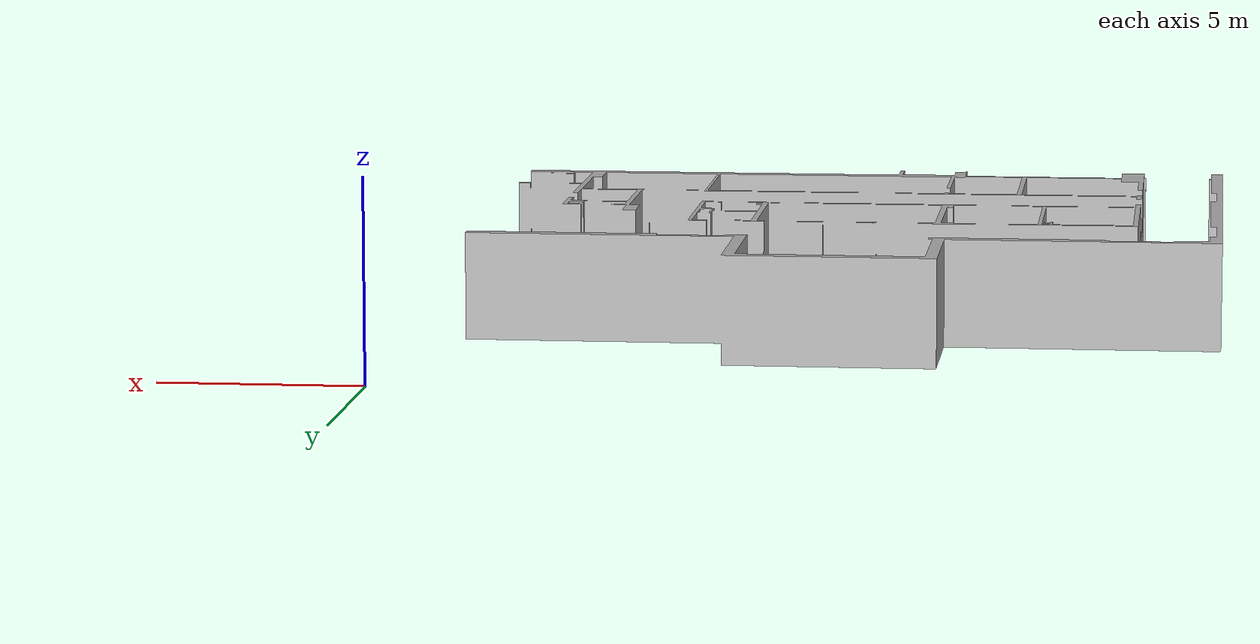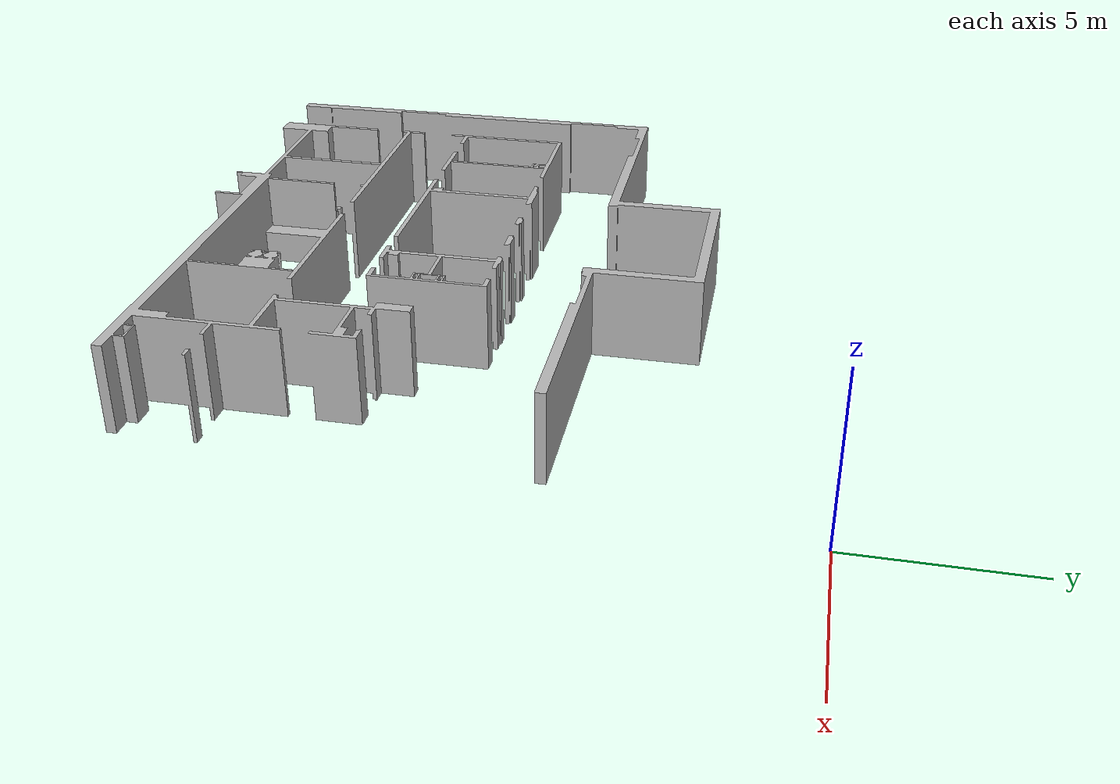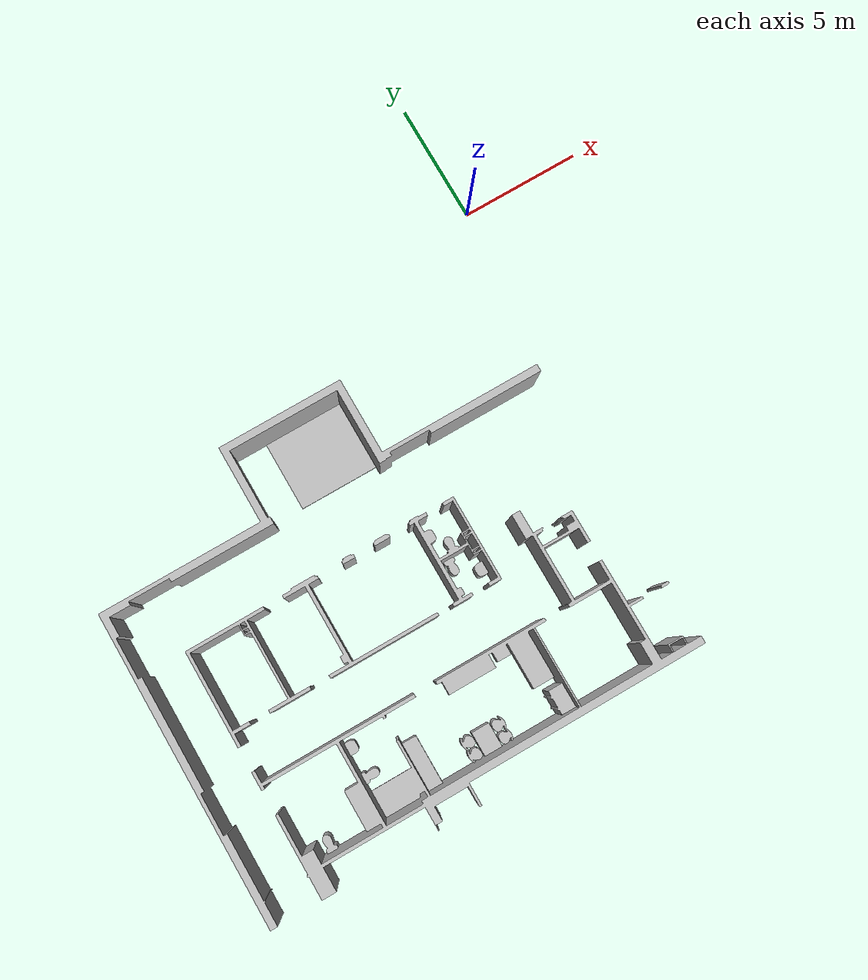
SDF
<?xml version="1.0" ?>
<sdf version="1.5">
  <model name="fhag">
    <static>true</static>
    <pose>-20 -20 0 0 0 0</pose>
    <link name="walls">
      <collision name="collision">
        <geometry>
          <mesh>
            <uri>model://fhag/meshes/fhag_floor.dae</uri>
          </mesh>
        </geometry>
      </collision>
      <visual name="visual">
        <geometry>
          <mesh>
            <uri>model://fhag/meshes/fhag_floor.dae</uri>
          </mesh>
        </geometry>
        <cast_shadows>false</cast_shadows>
      </visual>
    </link>
  </model>
</sdf>
